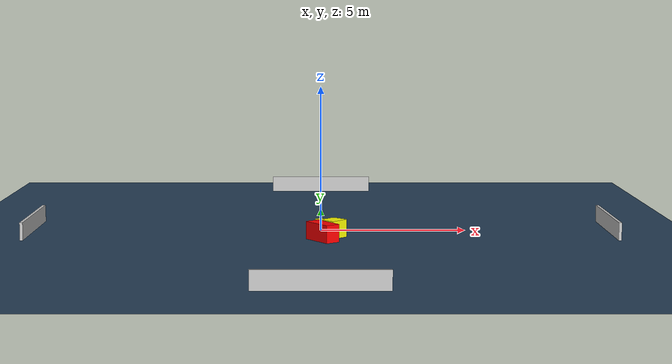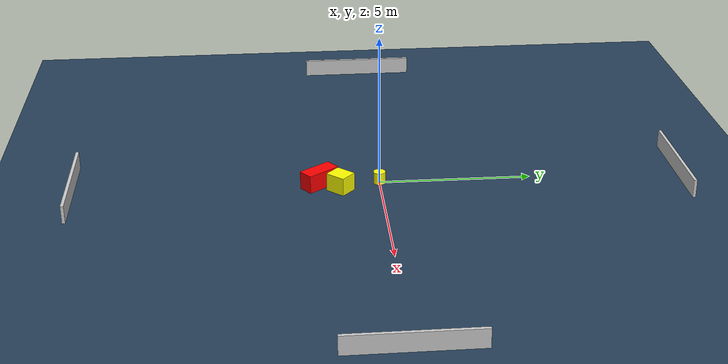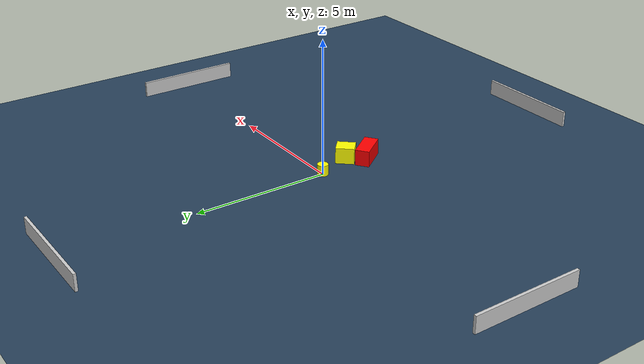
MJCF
<?xml version="1.0" ?>
<mujoco model="generated_environment">
  <option timestep="0.01" integrator="RK4" cone="elliptic"/>
  <default>
    <geom density="1"/>
  </default>
  <asset>
    <texture builtin="gradient" height="3072" name="skybox" rgb1="0.3 0.5 0.7" rgb2="0 0 0" type="skybox" width="512"/>
    <texture builtin="checker" height="300" name="groundplane" rgb1="0.2 0.3 0.4" rgb2="0.1 0.2 0.3" type="2d" width="300"/>
    <material name="groundplane" reflectance="0.2" texrepeat="5 5" texture="groundplane"/>
  </asset>
  <worldbody>
    <light dir="0 0 -1" directional="true" pos="0 0 1.5"/>
    <geom condim="3" friction="0.5 0.005 0.001" material="groundplane" name="floor" pos="0 0 0" size="0 0 0.05" type="plane"/>
    <body name="walls">
      <geom name="wall_1" condim="4" pos="-10.0 0.0 0.3" rgba="0.800000011920929 0.800000011920929 0.800000011920929 1.0" size="0.05 2.0 0.3" type="box"/>
      <geom name="wall_2" condim="4" pos="10.0 0.0 0.3" rgba="0.800000011920929 0.800000011920929 0.800000011920929 1.0" size="0.05 2.0 0.3" type="box"/>
      <geom name="wall_3" condim="4" pos="0.0 -10.0 0.3" rgba="0.800000011920929 0.800000011920929 0.800000011920929 1.0" size="2.0 0.05 0.3" type="box"/>
      <geom name="wall_4" condim="4" pos="0.0 10.0 0.3" rgba="0.800000011920929 0.800000011920929 0.800000011920929 1.0" size="2.0 0.05 0.3" type="box"/>
    </body>
    <body name="robot">
      <joint name="joint_x" type="slide" pos="0 0 0" axis="1 0 0"/>
      <joint name="joint_y" type="slide" pos="0 0 0" axis="0 1 0"/>
      <geom name="robot" type="cylinder" pos="0.0 0.0 0.2" size="0.2 0.2 0.0" mass="5.0" friction="1.0 0.005 0.0001" condim="4" rgba="1.0 1.0 0.0 1.0"/>
    </body>
    <body name="obstacle_1_movable">
      <geom name="obstacle_1_movable" condim="4" pos="0.4320097546372533 -1.308303936503359 0.3" euler="0 0 137.7377643814227" friction="0.0 0.005 0.001" rgba="1.0 1.0 0.0 1.0" size="0.2985003462366148 0.34247049258720985 0.3" type="box" mass="0.1"/>
      <joint type="free"/>
    </body>
    <body name="obstacle_2_static">
      <geom name="obstacle_2_static" condim="4" pos="0.06113925178599062 -1.9831167759409394 0.3" euler="0 0 36.450656738871785" friction="0.0 0.005 0.001" rgba="1.0 0.0 0.0 1.0" size="0.2601140091399958 0.5841699736572834 0.3" type="box"/>
    </body>
  </worldbody>
  <actuator>
    <motor name="actuator_x" joint="joint_x" gear="1" ctrlrange="-1 1"/>
    <motor name="actuator_y" joint="joint_y" gear="1" ctrlrange="-1 1"/>
  </actuator>
</mujoco>
